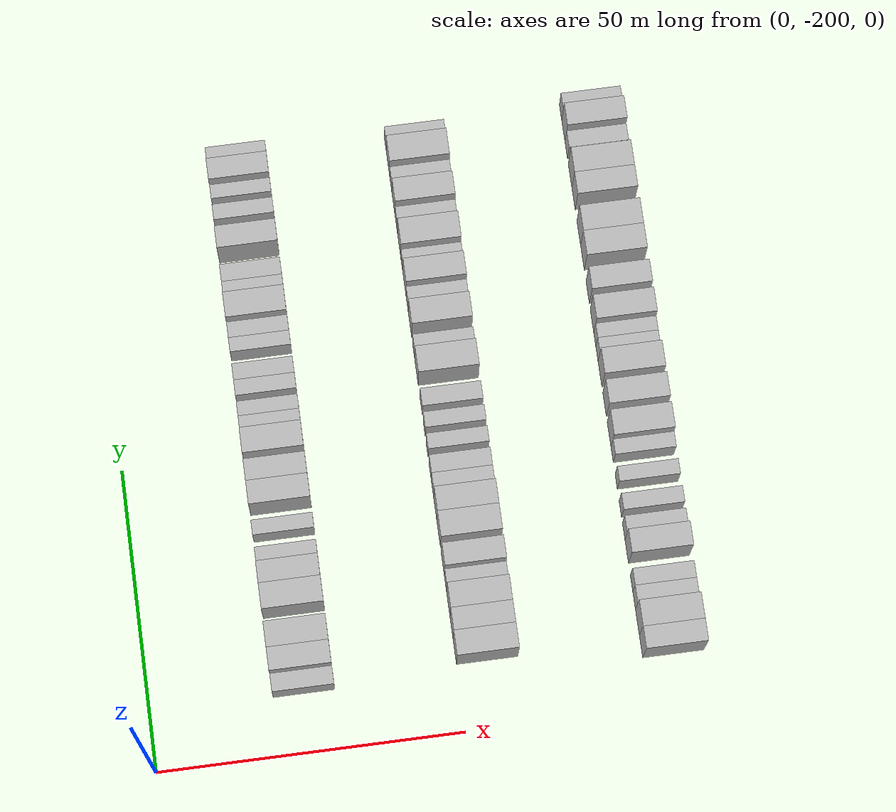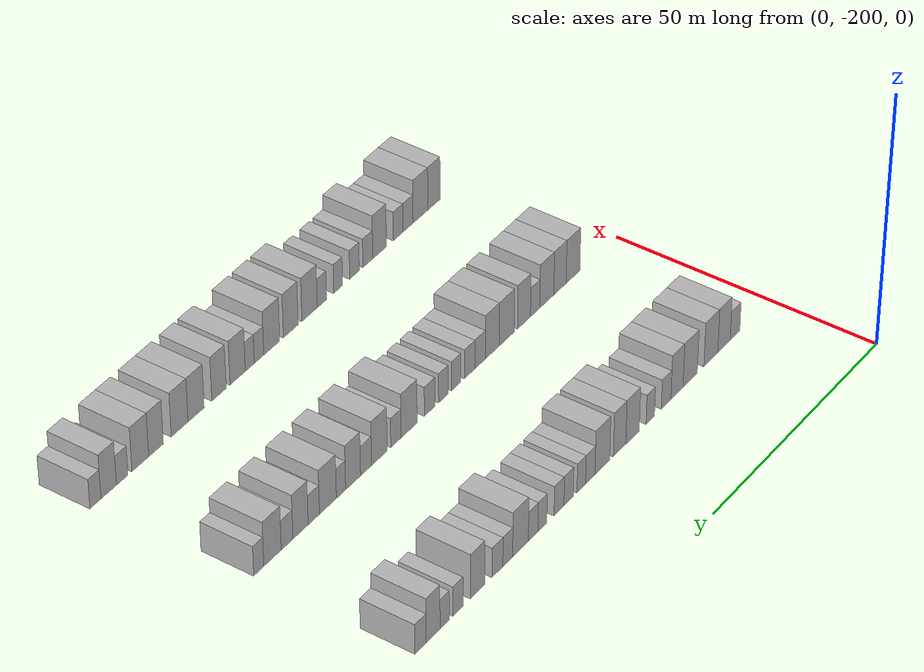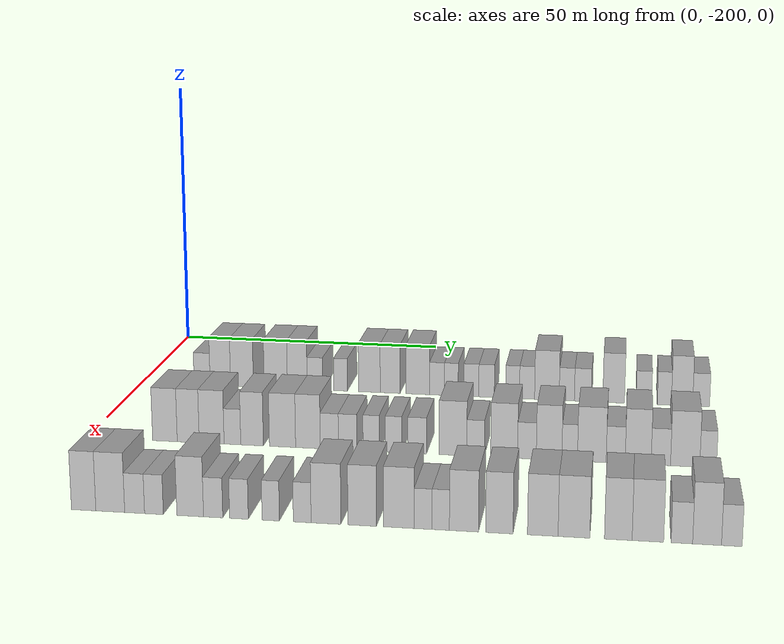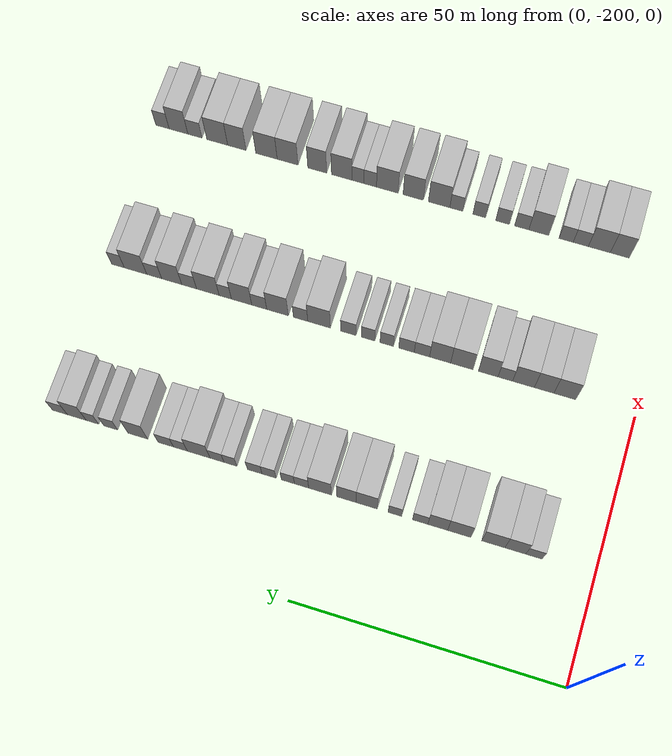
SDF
<sdf version="1.6">
 <world name="default">
  <model name="building_25">
   <static>1</static>
   <pose>25.0000 -188.8988 0 0.000000 0.000000 0.000000</pose>
   <link name="link">
    <pose>0 0 3.00 0 0 0</pose>
    <collision name="collision"><geometry><box><size>10.0000 2.9748 6.0000</size></box></geometry></collision>
    <visual name="visual">
     <cast_shadows>0</cast_shadows>
     <geometry><box><size>10.0000 2.9748 6.0000</size></box></geometry>
     <material>
      <script>
       <uri>model://HANNAS_wall/materials/scripts</uri>
       <uri>model://HANNAS_wall/materials/textures</uri>
       <name>vrc/HANNAS_wall</name>
      </script>
     </material>
    </visual>
   </link>
  </model>
  <model name="building_26">
   <static>1</static>
   <pose>25.0000 -185.5130 0 0.000000 0.000000 0.000000</pose>
   <link name="link">
    <pose>0 0 4.50 0 0 0</pose>
    <collision name="collision"><geometry><box><size>10.0000 3.7967 9.0000</size></box></geometry></collision>
    <visual name="visual">
     <cast_shadows>0</cast_shadows>
     <geometry><box><size>10.0000 3.7967 9.0000</size></box></geometry>
     <material>
      <script>
       <uri>model://HANNAS_wall/materials/scripts</uri>
       <uri>model://HANNAS_wall/materials/textures</uri>
       <name>vrc/HANNAS_wall</name>
      </script>
     </material>
    </visual>
   </link>
  </model>
  <model name="building_27">
   <static>1</static>
   <pose>25.0000 -181.5029 0 0.000000 0.000000 0.000000</pose>
   <link name="link">
    <pose>0 0 4.50 0 0 0</pose>
    <collision name="collision"><geometry><box><size>10.0000 4.2234 9.0000</size></box></geometry></collision>
    <visual name="visual">
     <cast_shadows>0</cast_shadows>
     <geometry><box><size>10.0000 4.2234 9.0000</size></box></geometry>
     <material>
      <script>
       <uri>model://HANNAS_wall/materials/scripts</uri>
       <uri>model://HANNAS_wall/materials/textures</uri>
       <name>vrc/HANNAS_wall</name>
      </script>
     </material>
    </visual>
   </link>
  </model>
  <model name="building_28">
   <static>1</static>
   <pose>25.0000 -175.2594 0 0.000000 0.000000 0.000000</pose>
   <link name="link">
    <pose>0 0 4.50 0 0 0</pose>
    <collision name="collision"><geometry><box><size>10.0000 4.2636 9.0000</size></box></geometry></collision>
    <visual name="visual">
     <cast_shadows>0</cast_shadows>
     <geometry><box><size>10.0000 4.2636 9.0000</size></box></geometry>
     <material>
      <script>
       <uri>model://HANNAS_wall/materials/scripts</uri>
       <uri>model://HANNAS_wall/materials/textures</uri>
       <name>vrc/HANNAS_wall</name>
      </script>
     </material>
    </visual>
   </link>
  </model>
  <model name="building_29">
   <static>1</static>
   <pose>25.0000 -171.3169 0 0.000000 0.000000 0.000000</pose>
   <link name="link">
    <pose>0 0 4.50 0 0 0</pose>
    <collision name="collision"><geometry><box><size>10.0000 3.6215 9.0000</size></box></geometry></collision>
    <visual name="visual">
     <cast_shadows>0</cast_shadows>
     <geometry><box><size>10.0000 3.6215 9.0000</size></box></geometry>
     <material>
      <script>
       <uri>model://HANNAS_wall/materials/scripts</uri>
       <uri>model://HANNAS_wall/materials/textures</uri>
       <name>vrc/HANNAS_wall</name>
      </script>
     </material>
    </visual>
   </link>
  </model>
  <model name="building_30">
   <static>1</static>
   <pose>25.0000 -168.0825 0 0.000000 0.000000 0.000000</pose>
   <link name="link">
    <pose>0 0 3.00 0 0 0</pose>
    <collision name="collision"><geometry><box><size>10.0000 2.8471 6.0000</size></box></geometry></collision>
    <visual name="visual">
     <cast_shadows>0</cast_shadows>
     <geometry><box><size>10.0000 2.8471 6.0000</size></box></geometry>
     <material>
      <script>
       <uri>model://HANNAS_wall/materials/scripts</uri>
       <uri>model://HANNAS_wall/materials/textures</uri>
       <name>vrc/HANNAS_wall</name>
      </script>
     </material>
    </visual>
   </link>
  </model>
  <model name="building_31">
   <static>1</static>
   <pose>25.0000 -163.4089 0 0.000000 0.000000 0.000000</pose>
   <link name="link">
    <pose>0 0 3.00 0 0 0</pose>
    <collision name="collision"><geometry><box><size>10.0000 2.5001 6.0000</size></box></geometry></collision>
    <visual name="visual">
     <cast_shadows>0</cast_shadows>
     <geometry><box><size>10.0000 2.5001 6.0000</size></box></geometry>
     <material>
      <script>
       <uri>model://HANNAS_wall/materials/scripts</uri>
       <uri>model://HANNAS_wall/materials/textures</uri>
       <name>vrc/HANNAS_wall</name>
      </script>
     </material>
    </visual>
   </link>
  </model>
  <model name="building_32">
   <static>1</static>
   <pose>25.0000 -158.1939 0 0.000000 0.000000 0.000000</pose>
   <link name="link">
    <pose>0 0 4.50 0 0 0</pose>
    <collision name="collision"><geometry><box><size>10.0000 3.9300 9.0000</size></box></geometry></collision>
    <visual name="visual">
     <cast_shadows>0</cast_shadows>
     <geometry><box><size>10.0000 3.9300 9.0000</size></box></geometry>
     <material>
      <script>
       <uri>model://HANNAS_wall/materials/scripts</uri>
       <uri>model://HANNAS_wall/materials/textures</uri>
       <name>vrc/HANNAS_wall</name>
      </script>
     </material>
    </visual>
   </link>
  </model>
  <model name="building_33">
   <static>1</static>
   <pose>25.0000 -154.4274 0 0.000000 0.000000 0.000000</pose>
   <link name="link">
    <pose>0 0 4.50 0 0 0</pose>
    <collision name="collision"><geometry><box><size>10.0000 3.6031 9.0000</size></box></geometry></collision>
    <visual name="visual">
     <cast_shadows>0</cast_shadows>
     <geometry><box><size>10.0000 3.6031 9.0000</size></box></geometry>
     <material>
      <script>
       <uri>model://HANNAS_wall/materials/scripts</uri>
       <uri>model://HANNAS_wall/materials/textures</uri>
       <name>vrc/HANNAS_wall</name>
      </script>
     </material>
    </visual>
   </link>
  </model>
  <model name="building_34">
   <static>1</static>
   <pose>25.0000 -149.4986 0 0.000000 0.000000 0.000000</pose>
   <link name="link">
    <pose>0 0 4.50 0 0 0</pose>
    <collision name="collision"><geometry><box><size>10.0000 4.2544 9.0000</size></box></geometry></collision>
    <visual name="visual">
     <cast_shadows>0</cast_shadows>
     <geometry><box><size>10.0000 4.2544 9.0000</size></box></geometry>
     <material>
      <script>
       <uri>model://HANNAS_wall/materials/scripts</uri>
       <uri>model://HANNAS_wall/materials/textures</uri>
       <name>vrc/HANNAS_wall</name>
      </script>
     </material>
    </visual>
   </link>
  </model>
  <model name="building_35">
   <static>1</static>
   <pose>25.0000 -146.0353 0 0.000000 0.000000 0.000000</pose>
   <link name="link">
    <pose>0 0 3.00 0 0 0</pose>
    <collision name="collision"><geometry><box><size>10.0000 2.6723 6.0000</size></box></geometry></collision>
    <visual name="visual">
     <cast_shadows>0</cast_shadows>
     <geometry><box><size>10.0000 2.6723 6.0000</size></box></geometry>
     <material>
      <script>
       <uri>model://HANNAS_wall/materials/scripts</uri>
       <uri>model://HANNAS_wall/materials/textures</uri>
       <name>vrc/HANNAS_wall</name>
      </script>
     </material>
    </visual>
   </link>
  </model>
  <model name="building_36">
   <static>1</static>
   <pose>25.0000 -143.4784 0 0.000000 0.000000 0.000000</pose>
   <link name="link">
    <pose>0 0 3.00 0 0 0</pose>
    <collision name="collision"><geometry><box><size>10.0000 2.4415 6.0000</size></box></geometry></collision>
    <visual name="visual">
     <cast_shadows>0</cast_shadows>
     <geometry><box><size>10.0000 2.4415 6.0000</size></box></geometry>
     <material>
      <script>
       <uri>model://HANNAS_wall/materials/scripts</uri>
       <uri>model://HANNAS_wall/materials/textures</uri>
       <name>vrc/HANNAS_wall</name>
      </script>
     </material>
    </visual>
   </link>
  </model>
  <model name="building_37">
   <static>1</static>
   <pose>25.0000 -139.9270 0 0.000000 0.000000 0.000000</pose>
   <link name="link">
    <pose>0 0 3.00 0 0 0</pose>
    <collision name="collision"><geometry><box><size>10.0000 2.6613 6.0000</size></box></geometry></collision>
    <visual name="visual">
     <cast_shadows>0</cast_shadows>
     <geometry><box><size>10.0000 2.6613 6.0000</size></box></geometry>
     <material>
      <script>
       <uri>model://HANNAS_wall/materials/scripts</uri>
       <uri>model://HANNAS_wall/materials/textures</uri>
       <name>vrc/HANNAS_wall</name>
      </script>
     </material>
    </visual>
   </link>
  </model>
  <model name="building_38">
   <static>1</static>
   <pose>25.0000 -137.2169 0 0.000000 0.000000 0.000000</pose>
   <link name="link">
    <pose>0 0 3.00 0 0 0</pose>
    <collision name="collision"><geometry><box><size>10.0000 2.7589 6.0000</size></box></geometry></collision>
    <visual name="visual">
     <cast_shadows>0</cast_shadows>
     <geometry><box><size>10.0000 2.7589 6.0000</size></box></geometry>
     <material>
      <script>
       <uri>model://HANNAS_wall/materials/scripts</uri>
       <uri>model://HANNAS_wall/materials/textures</uri>
       <name>vrc/HANNAS_wall</name>
      </script>
     </material>
    </visual>
   </link>
  </model>
  <model name="building_39">
   <static>1</static>
   <pose>25.0000 -132.6166 0 0.000000 0.000000 0.000000</pose>
   <link name="link">
    <pose>0 0 3.00 0 0 0</pose>
    <collision name="collision"><geometry><box><size>10.0000 2.4417 6.0000</size></box></geometry></collision>
    <visual name="visual">
     <cast_shadows>0</cast_shadows>
     <geometry><box><size>10.0000 2.4417 6.0000</size></box></geometry>
     <material>
      <script>
       <uri>model://HANNAS_wall/materials/scripts</uri>
       <uri>model://HANNAS_wall/materials/textures</uri>
       <name>vrc/HANNAS_wall</name>
      </script>
     </material>
    </visual>
   </link>
  </model>
  <model name="building_40">
   <static>1</static>
   <pose>25.0000 -130.0644 0 0.000000 0.000000 0.000000</pose>
   <link name="link">
    <pose>0 0 3.00 0 0 0</pose>
    <collision name="collision"><geometry><box><size>10.0000 2.6626 6.0000</size></box></geometry></collision>
    <visual name="visual">
     <cast_shadows>0</cast_shadows>
     <geometry><box><size>10.0000 2.6626 6.0000</size></box></geometry>
     <material>
      <script>
       <uri>model://HANNAS_wall/materials/scripts</uri>
       <uri>model://HANNAS_wall/materials/textures</uri>
       <name>vrc/HANNAS_wall</name>
      </script>
     </material>
    </visual>
   </link>
  </model>
  <model name="building_41">
   <static>1</static>
   <pose>25.0000 -126.5774 0 0.000000 0.000000 0.000000</pose>
   <link name="link">
    <pose>0 0 4.50 0 0 0</pose>
    <collision name="collision"><geometry><box><size>10.0000 4.3115 9.0000</size></box></geometry></collision>
    <visual name="visual">
     <cast_shadows>0</cast_shadows>
     <geometry><box><size>10.0000 4.3115 9.0000</size></box></geometry>
     <material>
      <script>
       <uri>model://HANNAS_wall/materials/scripts</uri>
       <uri>model://HANNAS_wall/materials/textures</uri>
       <name>vrc/HANNAS_wall</name>
      </script>
     </material>
    </visual>
   </link>
  </model>
  <model name="building_42">
   <static>1</static>
   <pose>25.0000 -123.0931 0 0.000000 0.000000 0.000000</pose>
   <link name="link">
    <pose>0 0 3.00 0 0 0</pose>
    <collision name="collision"><geometry><box><size>10.0000 2.6571 6.0000</size></box></geometry></collision>
    <visual name="visual">
     <cast_shadows>0</cast_shadows>
     <geometry><box><size>10.0000 2.6571 6.0000</size></box></geometry>
     <material>
      <script>
       <uri>model://HANNAS_wall/materials/scripts</uri>
       <uri>model://HANNAS_wall/materials/textures</uri>
       <name>vrc/HANNAS_wall</name>
      </script>
     </material>
    </visual>
   </link>
  </model>
  <model name="building_43">
   <static>1</static>
   <pose>25.0000 -120.2917 0 0.000000 0.000000 0.000000</pose>
   <link name="link">
    <pose>0 0 3.00 0 0 0</pose>
    <collision name="collision"><geometry><box><size>10.0000 2.9458 6.0000</size></box></geometry></collision>
    <visual name="visual">
     <cast_shadows>0</cast_shadows>
     <geometry><box><size>10.0000 2.9458 6.0000</size></box></geometry>
     <material>
      <script>
       <uri>model://HANNAS_wall/materials/scripts</uri>
       <uri>model://HANNAS_wall/materials/textures</uri>
       <name>vrc/HANNAS_wall</name>
      </script>
     </material>
    </visual>
   </link>
  </model>
  <model name="building_44">
   <static>1</static>
   <pose>25.0000 -114.9321 0 0.000000 0.000000 0.000000</pose>
   <link name="link">
    <pose>0 0 4.50 0 0 0</pose>
    <collision name="collision"><geometry><box><size>10.0000 3.7733 9.0000</size></box></geometry></collision>
    <visual name="visual">
     <cast_shadows>0</cast_shadows>
     <geometry><box><size>10.0000 3.7733 9.0000</size></box></geometry>
     <material>
      <script>
       <uri>model://HANNAS_wall/materials/scripts</uri>
       <uri>model://HANNAS_wall/materials/textures</uri>
       <name>vrc/HANNAS_wall</name>
      </script>
     </material>
    </visual>
   </link>
  </model>
  <model name="building_45">
   <static>1</static>
   <pose>25.0000 -109.7149 0 0.000000 0.000000 0.000000</pose>
   <link name="link">
    <pose>0 0 3.00 0 0 0</pose>
    <collision name="collision"><geometry><box><size>10.0000 2.6612 6.0000</size></box></geometry></collision>
    <visual name="visual">
     <cast_shadows>0</cast_shadows>
     <geometry><box><size>10.0000 2.6612 6.0000</size></box></geometry>
     <material>
      <script>
       <uri>model://HANNAS_wall/materials/scripts</uri>
       <uri>model://HANNAS_wall/materials/textures</uri>
       <name>vrc/HANNAS_wall</name>
      </script>
     </material>
    </visual>
   </link>
  </model>
  <model name="building_46">
   <static>1</static>
   <pose>25.0000 -106.1751 0 0.000000 0.000000 0.000000</pose>
   <link name="link">
    <pose>0 0 3.00 0 0 0</pose>
    <collision name="collision"><geometry><box><size>10.0000 2.4183 6.0000</size></box></geometry></collision>
    <visual name="visual">
     <cast_shadows>0</cast_shadows>
     <geometry><box><size>10.0000 2.4183 6.0000</size></box></geometry>
     <material>
      <script>
       <uri>model://HANNAS_wall/materials/scripts</uri>
       <uri>model://HANNAS_wall/materials/textures</uri>
       <name>vrc/HANNAS_wall</name>
      </script>
     </material>
    </visual>
   </link>
  </model>
  <model name="building_47">
   <static>1</static>
   <pose>25.0000 -103.1440 0 0.000000 0.000000 0.000000</pose>
   <link name="link">
    <pose>0 0 4.50 0 0 0</pose>
    <collision name="collision"><geometry><box><size>10.0000 3.6439 9.0000</size></box></geometry></collision>
    <visual name="visual">
     <cast_shadows>0</cast_shadows>
     <geometry><box><size>10.0000 3.6439 9.0000</size></box></geometry>
     <material>
      <script>
       <uri>model://HANNAS_wall/materials/scripts</uri>
       <uri>model://HANNAS_wall/materials/textures</uri>
       <name>vrc/HANNAS_wall</name>
      </script>
     </material>
    </visual>
   </link>
  </model>
  <model name="building_48">
   <static>1</static>
   <pose>25.0000 -99.8734 0 0.000000 0.000000 0.000000</pose>
   <link name="link">
    <pose>0 0 3.00 0 0 0</pose>
    <collision name="collision"><geometry><box><size>10.0000 2.8973 6.0000</size></box></geometry></collision>
    <visual name="visual">
     <cast_shadows>0</cast_shadows>
     <geometry><box><size>10.0000 2.8973 6.0000</size></box></geometry>
     <material>
      <script>
       <uri>model://HANNAS_wall/materials/scripts</uri>
       <uri>model://HANNAS_wall/materials/textures</uri>
       <name>vrc/HANNAS_wall</name>
      </script>
     </material>
    </visual>
   </link>
  </model>
  <model name="building_176">
   <static>1</static>
   <pose>55.0000 -186.8468 0 0.000000 0.000000 0.000000</pose>
   <link name="link">
    <pose>0 0 4.50 0 0 0</pose>
    <collision name="collision"><geometry><box><size>10.0000 4.1241 9.0000</size></box></geometry></collision>
    <visual name="visual">
     <cast_shadows>0</cast_shadows>
     <geometry><box><size>10.0000 4.1241 9.0000</size></box></geometry>
     <material>
      <script>
       <uri>model://HANNAS_wall/materials/scripts</uri>
       <uri>model://HANNAS_wall/materials/textures</uri>
       <name>vrc/HANNAS_wall</name>
      </script>
     </material>
    </visual>
   </link>
  </model>
  <model name="building_177">
   <static>1</static>
   <pose>55.0000 -182.9463 0 0.000000 0.000000 0.000000</pose>
   <link name="link">
    <pose>0 0 4.50 0 0 0</pose>
    <collision name="collision"><geometry><box><size>10.0000 3.6770 9.0000</size></box></geometry></collision>
    <visual name="visual">
     <cast_shadows>0</cast_shadows>
     <geometry><box><size>10.0000 3.6770 9.0000</size></box></geometry>
     <material>
      <script>
       <uri>model://HANNAS_wall/materials/scripts</uri>
       <uri>model://HANNAS_wall/materials/textures</uri>
       <name>vrc/HANNAS_wall</name>
      </script>
     </material>
    </visual>
   </link>
  </model>
  <model name="building_178">
   <static>1</static>
   <pose>55.0000 -179.0432 0 0.000000 0.000000 0.000000</pose>
   <link name="link">
    <pose>0 0 4.50 0 0 0</pose>
    <collision name="collision"><geometry><box><size>10.0000 4.1292 9.0000</size></box></geometry></collision>
    <visual name="visual">
     <cast_shadows>0</cast_shadows>
     <geometry><box><size>10.0000 4.1292 9.0000</size></box></geometry>
     <material>
      <script>
       <uri>model://HANNAS_wall/materials/scripts</uri>
       <uri>model://HANNAS_wall/materials/textures</uri>
       <name>vrc/HANNAS_wall</name>
      </script>
     </material>
    </visual>
   </link>
  </model>
  <model name="building_179">
   <static>1</static>
   <pose>55.0000 -175.6002 0 0.000000 0.000000 0.000000</pose>
   <link name="link">
    <pose>0 0 3.00 0 0 0</pose>
    <collision name="collision"><geometry><box><size>10.0000 2.7567 6.0000</size></box></geometry></collision>
    <visual name="visual">
     <cast_shadows>0</cast_shadows>
     <geometry><box><size>10.0000 2.7567 6.0000</size></box></geometry>
     <material>
      <script>
       <uri>model://HANNAS_wall/materials/scripts</uri>
       <uri>model://HANNAS_wall/materials/textures</uri>
       <name>vrc/HANNAS_wall</name>
      </script>
     </material>
    </visual>
   </link>
  </model>
  <model name="building_180">
   <static>1</static>
   <pose>55.0000 -172.3541 0 0.000000 0.000000 0.000000</pose>
   <link name="link">
    <pose>0 0 4.50 0 0 0</pose>
    <collision name="collision"><geometry><box><size>10.0000 3.7356 9.0000</size></box></geometry></collision>
    <visual name="visual">
     <cast_shadows>0</cast_shadows>
     <geometry><box><size>10.0000 3.7356 9.0000</size></box></geometry>
     <material>
      <script>
       <uri>model://HANNAS_wall/materials/scripts</uri>
       <uri>model://HANNAS_wall/materials/textures</uri>
       <name>vrc/HANNAS_wall</name>
      </script>
     </material>
    </visual>
   </link>
  </model>
  <model name="building_181">
   <static>1</static>
   <pose>55.0000 -167.3401 0 0.000000 0.000000 0.000000</pose>
   <link name="link">
    <pose>0 0 4.50 0 0 0</pose>
    <collision name="collision"><geometry><box><size>10.0000 4.2922 9.0000</size></box></geometry></collision>
    <visual name="visual">
     <cast_shadows>0</cast_shadows>
     <geometry><box><size>10.0000 4.2922 9.0000</size></box></geometry>
     <material>
      <script>
       <uri>model://HANNAS_wall/materials/scripts</uri>
       <uri>model://HANNAS_wall/materials/textures</uri>
       <name>vrc/HANNAS_wall</name>
      </script>
     </material>
    </visual>
   </link>
  </model>
  <model name="building_182">
   <static>1</static>
   <pose>55.0000 -163.1769 0 0.000000 0.000000 0.000000</pose>
   <link name="link">
    <pose>0 0 4.50 0 0 0</pose>
    <collision name="collision"><geometry><box><size>10.0000 4.0341 9.0000</size></box></geometry></collision>
    <visual name="visual">
     <cast_shadows>0</cast_shadows>
     <geometry><box><size>10.0000 4.0341 9.0000</size></box></geometry>
     <material>
      <script>
       <uri>model://HANNAS_wall/materials/scripts</uri>
       <uri>model://HANNAS_wall/materials/textures</uri>
       <name>vrc/HANNAS_wall</name>
      </script>
     </material>
    </visual>
   </link>
  </model>
  <model name="building_183">
   <static>1</static>
   <pose>55.0000 -159.6819 0 0.000000 0.000000 0.000000</pose>
   <link name="link">
    <pose>0 0 3.00 0 0 0</pose>
    <collision name="collision"><geometry><box><size>10.0000 2.9560 6.0000</size></box></geometry></collision>
    <visual name="visual">
     <cast_shadows>0</cast_shadows>
     <geometry><box><size>10.0000 2.9560 6.0000</size></box></geometry>
     <material>
      <script>
       <uri>model://HANNAS_wall/materials/scripts</uri>
       <uri>model://HANNAS_wall/materials/textures</uri>
       <name>vrc/HANNAS_wall</name>
      </script>
     </material>
    </visual>
   </link>
  </model>
  <model name="building_184">
   <static>1</static>
   <pose>55.0000 -156.7044 0 0.000000 0.000000 0.000000</pose>
   <link name="link">
    <pose>0 0 3.00 0 0 0</pose>
    <collision name="collision"><geometry><box><size>10.0000 2.9989 6.0000</size></box></geometry></collision>
    <visual name="visual">
     <cast_shadows>0</cast_shadows>
     <geometry><box><size>10.0000 2.9989 6.0000</size></box></geometry>
     <material>
      <script>
       <uri>model://HANNAS_wall/materials/scripts</uri>
       <uri>model://HANNAS_wall/materials/textures</uri>
       <name>vrc/HANNAS_wall</name>
      </script>
     </material>
    </visual>
   </link>
  </model>
  <model name="building_185">
   <static>1</static>
   <pose>55.0000 -152.9023 0 0.000000 0.000000 0.000000</pose>
   <link name="link">
    <pose>0 0 3.00 0 0 0</pose>
    <collision name="collision"><geometry><box><size>10.0000 2.6054 6.0000</size></box></geometry></collision>
    <visual name="visual">
     <cast_shadows>0</cast_shadows>
     <geometry><box><size>10.0000 2.6054 6.0000</size></box></geometry>
     <material>
      <script>
       <uri>model://HANNAS_wall/materials/scripts</uri>
       <uri>model://HANNAS_wall/materials/textures</uri>
       <name>vrc/HANNAS_wall</name>
      </script>
     </material>
    </visual>
   </link>
  </model>
  <model name="building_186">
   <static>1</static>
   <pose>55.0000 -149.2831 0 0.000000 0.000000 0.000000</pose>
   <link name="link">
    <pose>0 0 3.00 0 0 0</pose>
    <collision name="collision"><geometry><box><size>10.0000 2.6328 6.0000</size></box></geometry></collision>
    <visual name="visual">
     <cast_shadows>0</cast_shadows>
     <geometry><box><size>10.0000 2.6328 6.0000</size></box></geometry>
     <material>
      <script>
       <uri>model://HANNAS_wall/materials/scripts</uri>
       <uri>model://HANNAS_wall/materials/textures</uri>
       <name>vrc/HANNAS_wall</name>
      </script>
     </material>
    </visual>
   </link>
  </model>
  <model name="building_187">
   <static>1</static>
   <pose>55.0000 -145.4742 0 0.000000 0.000000 0.000000</pose>
   <link name="link">
    <pose>0 0 3.00 0 0 0</pose>
    <collision name="collision"><geometry><box><size>10.0000 2.9851 6.0000</size></box></geometry></collision>
    <visual name="visual">
     <cast_shadows>0</cast_shadows>
     <geometry><box><size>10.0000 2.9851 6.0000</size></box></geometry>
     <material>
      <script>
       <uri>model://HANNAS_wall/materials/scripts</uri>
       <uri>model://HANNAS_wall/materials/textures</uri>
       <name>vrc/HANNAS_wall</name>
      </script>
     </material>
    </visual>
   </link>
  </model>
  <model name="building_188">
   <static>1</static>
   <pose>55.0000 -139.7740 0 0.000000 0.000000 0.000000</pose>
   <link name="link">
    <pose>0 0 4.50 0 0 0</pose>
    <collision name="collision"><geometry><box><size>10.0000 4.4152 9.0000</size></box></geometry></collision>
    <visual name="visual">
     <cast_shadows>0</cast_shadows>
     <geometry><box><size>10.0000 4.4152 9.0000</size></box></geometry>
     <material>
      <script>
       <uri>model://HANNAS_wall/materials/scripts</uri>
       <uri>model://HANNAS_wall/materials/textures</uri>
       <name>vrc/HANNAS_wall</name>
      </script>
     </material>
    </visual>
   </link>
  </model>
  <model name="building_189">
   <static>1</static>
   <pose>55.0000 -136.1726 0 0.000000 0.000000 0.000000</pose>
   <link name="link">
    <pose>0 0 3.00 0 0 0</pose>
    <collision name="collision"><geometry><box><size>10.0000 2.7875 6.0000</size></box></geometry></collision>
    <visual name="visual">
     <cast_shadows>0</cast_shadows>
     <geometry><box><size>10.0000 2.7875 6.0000</size></box></geometry>
     <material>
      <script>
       <uri>model://HANNAS_wall/materials/scripts</uri>
       <uri>model://HANNAS_wall/materials/textures</uri>
       <name>vrc/HANNAS_wall</name>
      </script>
     </material>
    </visual>
   </link>
  </model>
  <model name="building_190">
   <static>1</static>
   <pose>55.0000 -131.6580 0 0.000000 0.000000 0.000000</pose>
   <link name="link">
    <pose>0 0 4.50 0 0 0</pose>
    <collision name="collision"><geometry><box><size>10.0000 4.2417 9.0000</size></box></geometry></collision>
    <visual name="visual">
     <cast_shadows>0</cast_shadows>
     <geometry><box><size>10.0000 4.2417 9.0000</size></box></geometry>
     <material>
      <script>
       <uri>model://HANNAS_wall/materials/scripts</uri>
       <uri>model://HANNAS_wall/materials/textures</uri>
       <name>vrc/HANNAS_wall</name>
      </script>
     </material>
    </visual>
   </link>
  </model>
  <model name="building_191">
   <static>1</static>
   <pose>55.0000 -128.0659 0 0.000000 0.000000 0.000000</pose>
   <link name="link">
    <pose>0 0 3.00 0 0 0</pose>
    <collision name="collision"><geometry><box><size>10.0000 2.9425 6.0000</size></box></geometry></collision>
    <visual name="visual">
     <cast_shadows>0</cast_shadows>
     <geometry><box><size>10.0000 2.9425 6.0000</size></box></geometry>
     <material>
      <script>
       <uri>model://HANNAS_wall/materials/scripts</uri>
       <uri>model://HANNAS_wall/materials/textures</uri>
       <name>vrc/HANNAS_wall</name>
      </script>
     </material>
    </visual>
   </link>
  </model>
  <model name="building_192">
   <static>1</static>
   <pose>55.0000 -124.5884 0 0.000000 0.000000 0.000000</pose>
   <link name="link">
    <pose>0 0 4.50 0 0 0</pose>
    <collision name="collision"><geometry><box><size>10.0000 4.0125 9.0000</size></box></geometry></collision>
    <visual name="visual">
     <cast_shadows>0</cast_shadows>
     <geometry><box><size>10.0000 4.0125 9.0000</size></box></geometry>
     <material>
      <script>
       <uri>model://HANNAS_wall/materials/scripts</uri>
       <uri>model://HANNAS_wall/materials/textures</uri>
       <name>vrc/HANNAS_wall</name>
      </script>
     </material>
    </visual>
   </link>
  </model>
  <model name="building_193">
   <static>1</static>
   <pose>55.0000 -121.3646 0 0.000000 0.000000 0.000000</pose>
   <link name="link">
    <pose>0 0 3.00 0 0 0</pose>
    <collision name="collision"><geometry><box><size>10.0000 2.4350 6.0000</size></box></geometry></collision>
    <visual name="visual">
     <cast_shadows>0</cast_shadows>
     <geometry><box><size>10.0000 2.4350 6.0000</size></box></geometry>
     <material>
      <script>
       <uri>model://HANNAS_wall/materials/scripts</uri>
       <uri>model://HANNAS_wall/materials/textures</uri>
       <name>vrc/HANNAS_wall</name>
      </script>
     </material>
    </visual>
   </link>
  </model>
  <model name="building_194">
   <static>1</static>
   <pose>55.0000 -117.9118 0 0.000000 0.000000 0.000000</pose>
   <link name="link">
    <pose>0 0 4.50 0 0 0</pose>
    <collision name="collision"><geometry><box><size>10.0000 4.4707 9.0000</size></box></geometry></collision>
    <visual name="visual">
     <cast_shadows>0</cast_shadows>
     <geometry><box><size>10.0000 4.4707 9.0000</size></box></geometry>
     <material>
      <script>
       <uri>model://HANNAS_wall/materials/scripts</uri>
       <uri>model://HANNAS_wall/materials/textures</uri>
       <name>vrc/HANNAS_wall</name>
      </script>
     </material>
    </visual>
   </link>
  </model>
  <model name="building_195">
   <static>1</static>
   <pose>55.0000 -114.2077 0 0.000000 0.000000 0.000000</pose>
   <link name="link">
    <pose>0 0 3.00 0 0 0</pose>
    <collision name="collision"><geometry><box><size>10.0000 2.9374 6.0000</size></box></geometry></collision>
    <visual name="visual">
     <cast_shadows>0</cast_shadows>
     <geometry><box><size>10.0000 2.9374 6.0000</size></box></geometry>
     <material>
      <script>
       <uri>model://HANNAS_wall/materials/scripts</uri>
       <uri>model://HANNAS_wall/materials/textures</uri>
       <name>vrc/HANNAS_wall</name>
      </script>
     </material>
    </visual>
   </link>
  </model>
  <model name="building_196">
   <static>1</static>
   <pose>55.0000 -110.7365 0 0.000000 0.000000 0.000000</pose>
   <link name="link">
    <pose>0 0 4.50 0 0 0</pose>
    <collision name="collision"><geometry><box><size>10.0000 4.0049 9.0000</size></box></geometry></collision>
    <visual name="visual">
     <cast_shadows>0</cast_shadows>
     <geometry><box><size>10.0000 4.0049 9.0000</size></box></geometry>
     <material>
      <script>
       <uri>model://HANNAS_wall/materials/scripts</uri>
       <uri>model://HANNAS_wall/materials/textures</uri>
       <name>vrc/HANNAS_wall</name>
      </script>
     </material>
    </visual>
   </link>
  </model>
  <model name="building_197">
   <static>1</static>
   <pose>55.0000 -107.2400 0 0.000000 0.000000 0.000000</pose>
   <link name="link">
    <pose>0 0 3.00 0 0 0</pose>
    <collision name="collision"><geometry><box><size>10.0000 2.9882 6.0000</size></box></geometry></collision>
    <visual name="visual">
     <cast_shadows>0</cast_shadows>
     <geometry><box><size>10.0000 2.9882 6.0000</size></box></geometry>
     <material>
      <script>
       <uri>model://HANNAS_wall/materials/scripts</uri>
       <uri>model://HANNAS_wall/materials/textures</uri>
       <name>vrc/HANNAS_wall</name>
      </script>
     </material>
    </visual>
   </link>
  </model>
  <model name="building_198">
   <static>1</static>
   <pose>55.0000 -103.5035 0 0.000000 0.000000 0.000000</pose>
   <link name="link">
    <pose>0 0 4.50 0 0 0</pose>
    <collision name="collision"><geometry><box><size>10.0000 4.4848 9.0000</size></box></geometry></collision>
    <visual name="visual">
     <cast_shadows>0</cast_shadows>
     <geometry><box><size>10.0000 4.4848 9.0000</size></box></geometry>
     <material>
      <script>
       <uri>model://HANNAS_wall/materials/scripts</uri>
       <uri>model://HANNAS_wall/materials/textures</uri>
       <name>vrc/HANNAS_wall</name>
      </script>
     </material>
    </visual>
   </link>
  </model>
  <model name="building_199">
   <static>1</static>
   <pose>55.0000 -99.9818 0 0.000000 0.000000 0.000000</pose>
   <link name="link">
    <pose>0 0 3.00 0 0 0</pose>
    <collision name="collision"><geometry><box><size>10.0000 2.5585 6.0000</size></box></geometry></collision>
    <visual name="visual">
     <cast_shadows>0</cast_shadows>
     <geometry><box><size>10.0000 2.5585 6.0000</size></box></geometry>
     <material>
      <script>
       <uri>model://HANNAS_wall/materials/scripts</uri>
       <uri>model://HANNAS_wall/materials/textures</uri>
       <name>vrc/HANNAS_wall</name>
      </script>
     </material>
    </visual>
   </link>
  </model>
  <model name="building_318">
   <static>1</static>
   <pose>85.0000 -189.9357 0 0.000000 0.000000 0.000000</pose>
   <link name="link">
    <pose>0 0 4.50 0 0 0</pose>
    <collision name="collision"><geometry><box><size>10.0000 3.6541 9.0000</size></box></geometry></collision>
    <visual name="visual">
     <cast_shadows>0</cast_shadows>
     <geometry><box><size>10.0000 3.6541 9.0000</size></box></geometry>
     <material>
      <script>
       <uri>model://HANNAS_wall/materials/scripts</uri>
       <uri>model://HANNAS_wall/materials/textures</uri>
       <name>vrc/HANNAS_wall</name>
      </script>
     </material>
    </visual>
   </link>
  </model>
  <model name="building_319">
   <static>1</static>
   <pose>85.0000 -185.9586 0 0.000000 0.000000 0.000000</pose>
   <link name="link">
    <pose>0 0 4.50 0 0 0</pose>
    <collision name="collision"><geometry><box><size>10.0000 4.3001 9.0000</size></box></geometry></collision>
    <visual name="visual">
     <cast_shadows>0</cast_shadows>
     <geometry><box><size>10.0000 4.3001 9.0000</size></box></geometry>
     <material>
      <script>
       <uri>model://HANNAS_wall/materials/scripts</uri>
       <uri>model://HANNAS_wall/materials/textures</uri>
       <name>vrc/HANNAS_wall</name>
      </script>
     </material>
    </visual>
   </link>
  </model>
  <model name="building_320">
   <static>1</static>
   <pose>85.0000 -182.3337 0 0.000000 0.000000 0.000000</pose>
   <link name="link">
    <pose>0 0 3.00 0 0 0</pose>
    <collision name="collision"><geometry><box><size>10.0000 2.9496 6.0000</size></box></geometry></collision>
    <visual name="visual">
     <cast_shadows>0</cast_shadows>
     <geometry><box><size>10.0000 2.9496 6.0000</size></box></geometry>
     <material>
      <script>
       <uri>model://HANNAS_wall/materials/scripts</uri>
       <uri>model://HANNAS_wall/materials/textures</uri>
       <name>vrc/HANNAS_wall</name>
      </script>
     </material>
    </visual>
   </link>
  </model>
  <model name="building_321">
   <static>1</static>
   <pose>85.0000 -179.4694 0 0.000000 0.000000 0.000000</pose>
   <link name="link">
    <pose>0 0 3.00 0 0 0</pose>
    <collision name="collision"><geometry><box><size>10.0000 2.7791 6.0000</size></box></geometry></collision>
    <visual name="visual">
     <cast_shadows>0</cast_shadows>
     <geometry><box><size>10.0000 2.7791 6.0000</size></box></geometry>
     <material>
      <script>
       <uri>model://HANNAS_wall/materials/scripts</uri>
       <uri>model://HANNAS_wall/materials/textures</uri>
       <name>vrc/HANNAS_wall</name>
      </script>
     </material>
    </visual>
   </link>
  </model>
  <model name="building_322">
   <static>1</static>
   <pose>85.0000 -174.1181 0 0.000000 0.000000 0.000000</pose>
   <link name="link">
    <pose>0 0 4.50 0 0 0</pose>
    <collision name="collision"><geometry><box><size>10.0000 3.9234 9.0000</size></box></geometry></collision>
    <visual name="visual">
     <cast_shadows>0</cast_shadows>
     <geometry><box><size>10.0000 3.9234 9.0000</size></box></geometry>
     <material>
      <script>
       <uri>model://HANNAS_wall/materials/scripts</uri>
       <uri>model://HANNAS_wall/materials/textures</uri>
       <name>vrc/HANNAS_wall</name>
      </script>
     </material>
    </visual>
   </link>
  </model>
  <model name="building_323">
   <static>1</static>
   <pose>85.0000 -170.7479 0 0.000000 0.000000 0.000000</pose>
   <link name="link">
    <pose>0 0 3.00 0 0 0</pose>
    <collision name="collision"><geometry><box><size>10.0000 2.8171 6.0000</size></box></geometry></collision>
    <visual name="visual">
     <cast_shadows>0</cast_shadows>
     <geometry><box><size>10.0000 2.8171 6.0000</size></box></geometry>
     <material>
      <script>
       <uri>model://HANNAS_wall/materials/scripts</uri>
       <uri>model://HANNAS_wall/materials/textures</uri>
       <name>vrc/HANNAS_wall</name>
      </script>
     </material>
    </visual>
   </link>
  </model>
  <model name="building_324">
   <static>1</static>
   <pose>85.0000 -166.9764 0 0.000000 0.000000 0.000000</pose>
   <link name="link">
    <pose>0 0 3.00 0 0 0</pose>
    <collision name="collision"><geometry><box><size>10.0000 2.7258 6.0000</size></box></geometry></collision>
    <visual name="visual">
     <cast_shadows>0</cast_shadows>
     <geometry><box><size>10.0000 2.7258 6.0000</size></box></geometry>
     <material>
      <script>
       <uri>model://HANNAS_wall/materials/scripts</uri>
       <uri>model://HANNAS_wall/materials/textures</uri>
       <name>vrc/HANNAS_wall</name>
      </script>
     </material>
    </visual>
   </link>
  </model>
  <model name="building_325">
   <static>1</static>
   <pose>85.0000 -162.3537 0 0.000000 0.000000 0.000000</pose>
   <link name="link">
    <pose>0 0 3.00 0 0 0</pose>
    <collision name="collision"><geometry><box><size>10.0000 2.5195 6.0000</size></box></geometry></collision>
    <visual name="visual">
     <cast_shadows>0</cast_shadows>
     <geometry><box><size>10.0000 2.5195 6.0000</size></box></geometry>
     <material>
      <script>
       <uri>model://HANNAS_wall/materials/scripts</uri>
       <uri>model://HANNAS_wall/materials/textures</uri>
       <name>vrc/HANNAS_wall</name>
      </script>
     </material>
    </visual>
   </link>
  </model>
  <model name="building_326">
   <static>1</static>
   <pose>85.0000 -157.8089 0 0.000000 0.000000 0.000000</pose>
   <link name="link">
    <pose>0 0 3.00 0 0 0</pose>
    <collision name="collision"><geometry><box><size>10.0000 2.5701 6.0000</size></box></geometry></collision>
    <visual name="visual">
     <cast_shadows>0</cast_shadows>
     <geometry><box><size>10.0000 2.5701 6.0000</size></box></geometry>
     <material>
      <script>
       <uri>model://HANNAS_wall/materials/scripts</uri>
       <uri>model://HANNAS_wall/materials/textures</uri>
       <name>vrc/HANNAS_wall</name>
      </script>
     </material>
    </visual>
   </link>
  </model>
  <model name="building_327">
   <static>1</static>
   <pose>85.0000 -154.3821 0 0.000000 0.000000 0.000000</pose>
   <link name="link">
    <pose>0 0 4.50 0 0 0</pose>
    <collision name="collision"><geometry><box><size>10.0000 4.2836 9.0000</size></box></geometry></collision>
    <visual name="visual">
     <cast_shadows>0</cast_shadows>
     <geometry><box><size>10.0000 4.2836 9.0000</size></box></geometry>
     <material>
      <script>
       <uri>model://HANNAS_wall/materials/scripts</uri>
       <uri>model://HANNAS_wall/materials/textures</uri>
       <name>vrc/HANNAS_wall</name>
      </script>
     </material>
    </visual>
   </link>
  </model>
  <model name="building_328">
   <static>1</static>
   <pose>85.0000 -149.2050 0 0.000000 0.000000 0.000000</pose>
   <link name="link">
    <pose>0 0 4.50 0 0 0</pose>
    <collision name="collision"><geometry><box><size>10.0000 4.0706 9.0000</size></box></geometry></collision>
    <visual name="visual">
     <cast_shadows>0</cast_shadows>
     <geometry><box><size>10.0000 4.0706 9.0000</size></box></geometry>
     <material>
      <script>
       <uri>model://HANNAS_wall/materials/scripts</uri>
       <uri>model://HANNAS_wall/materials/textures</uri>
       <name>vrc/HANNAS_wall</name>
      </script>
     </material>
    </visual>
   </link>
  </model>
  <model name="building_329">
   <static>1</static>
   <pose>85.0000 -143.9995 0 0.000000 0.000000 0.000000</pose>
   <link name="link">
    <pose>0 0 4.50 0 0 0</pose>
    <collision name="collision"><geometry><box><size>10.0000 4.3403 9.0000</size></box></geometry></collision>
    <visual name="visual">
     <cast_shadows>0</cast_shadows>
     <geometry><box><size>10.0000 4.3403 9.0000</size></box></geometry>
     <material>
      <script>
       <uri>model://HANNAS_wall/materials/scripts</uri>
       <uri>model://HANNAS_wall/materials/textures</uri>
       <name>vrc/HANNAS_wall</name>
      </script>
     </material>
    </visual>
   </link>
  </model>
  <model name="building_330">
   <static>1</static>
   <pose>85.0000 -140.5615 0 0.000000 0.000000 0.000000</pose>
   <link name="link">
    <pose>0 0 3.00 0 0 0</pose>
    <collision name="collision"><geometry><box><size>10.0000 2.5356 6.0000</size></box></geometry></collision>
    <visual name="visual">
     <cast_shadows>0</cast_shadows>
     <geometry><box><size>10.0000 2.5356 6.0000</size></box></geometry>
     <material>
      <script>
       <uri>model://HANNAS_wall/materials/scripts</uri>
       <uri>model://HANNAS_wall/materials/textures</uri>
       <name>vrc/HANNAS_wall</name>
      </script>
     </material>
    </visual>
   </link>
  </model>
  <model name="building_331">
   <static>1</static>
   <pose>85.0000 -138.0785 0 0.000000 0.000000 0.000000</pose>
   <link name="link">
    <pose>0 0 3.00 0 0 0</pose>
    <collision name="collision"><geometry><box><size>10.0000 2.4304 6.0000</size></box></geometry></collision>
    <visual name="visual">
     <cast_shadows>0</cast_shadows>
     <geometry><box><size>10.0000 2.4304 6.0000</size></box></geometry>
     <material>
      <script>
       <uri>model://HANNAS_wall/materials/scripts</uri>
       <uri>model://HANNAS_wall/materials/textures</uri>
       <name>vrc/HANNAS_wall</name>
      </script>
     </material>
    </visual>
   </link>
  </model>
  <model name="building_332">
   <static>1</static>
   <pose>85.0000 -134.8202 0 0.000000 0.000000 0.000000</pose>
   <link name="link">
    <pose>0 0 4.50 0 0 0</pose>
    <collision name="collision"><geometry><box><size>10.0000 4.0862 9.0000</size></box></geometry></collision>
    <visual name="visual">
     <cast_shadows>0</cast_shadows>
     <geometry><box><size>10.0000 4.0862 9.0000</size></box></geometry>
     <material>
      <script>
       <uri>model://HANNAS_wall/materials/scripts</uri>
       <uri>model://HANNAS_wall/materials/textures</uri>
       <name>vrc/HANNAS_wall</name>
      </script>
     </material>
    </visual>
   </link>
  </model>
  <model name="building_333">
   <static>1</static>
   <pose>85.0000 -129.8695 0 0.000000 0.000000 0.000000</pose>
   <link name="link">
    <pose>0 0 4.50 0 0 0</pose>
    <collision name="collision"><geometry><box><size>10.0000 3.8151 9.0000</size></box></geometry></collision>
    <visual name="visual">
     <cast_shadows>0</cast_shadows>
     <geometry><box><size>10.0000 3.8151 9.0000</size></box></geometry>
     <material>
      <script>
       <uri>model://HANNAS_wall/materials/scripts</uri>
       <uri>model://HANNAS_wall/materials/textures</uri>
       <name>vrc/HANNAS_wall</name>
      </script>
     </material>
    </visual>
   </link>
  </model>
  <model name="building_334">
   <static>1</static>
   <pose>85.0000 -123.8462 0 0.000000 0.000000 0.000000</pose>
   <link name="link">
    <pose>0 0 4.50 0 0 0</pose>
    <collision name="collision"><geometry><box><size>10.0000 4.2314 9.0000</size></box></geometry></collision>
    <visual name="visual">
     <cast_shadows>0</cast_shadows>
     <geometry><box><size>10.0000 4.2314 9.0000</size></box></geometry>
     <material>
      <script>
       <uri>model://HANNAS_wall/materials/scripts</uri>
       <uri>model://HANNAS_wall/materials/textures</uri>
       <name>vrc/HANNAS_wall</name>
      </script>
     </material>
    </visual>
   </link>
  </model>
  <model name="building_335">
   <static>1</static>
   <pose>85.0000 -119.5435 0 0.000000 0.000000 0.000000</pose>
   <link name="link">
    <pose>0 0 4.50 0 0 0</pose>
    <collision name="collision"><geometry><box><size>10.0000 4.3741 9.0000</size></box></geometry></collision>
    <visual name="visual">
     <cast_shadows>0</cast_shadows>
     <geometry><box><size>10.0000 4.3741 9.0000</size></box></geometry>
     <material>
      <script>
       <uri>model://HANNAS_wall/materials/scripts</uri>
       <uri>model://HANNAS_wall/materials/textures</uri>
       <name>vrc/HANNAS_wall</name>
      </script>
     </material>
    </visual>
   </link>
  </model>
  <model name="building_336">
   <static>1</static>
   <pose>85.0000 -113.4714 0 0.000000 0.000000 0.000000</pose>
   <link name="link">
    <pose>0 0 4.50 0 0 0</pose>
    <collision name="collision"><geometry><box><size>10.0000 3.7702 9.0000</size></box></geometry></collision>
    <visual name="visual">
     <cast_shadows>0</cast_shadows>
     <geometry><box><size>10.0000 3.7702 9.0000</size></box></geometry>
     <material>
      <script>
       <uri>model://HANNAS_wall/materials/scripts</uri>
       <uri>model://HANNAS_wall/materials/textures</uri>
       <name>vrc/HANNAS_wall</name>
      </script>
     </material>
    </visual>
   </link>
  </model>
  <model name="building_337">
   <static>1</static>
   <pose>85.0000 -109.4394 0 0.000000 0.000000 0.000000</pose>
   <link name="link">
    <pose>0 0 4.50 0 0 0</pose>
    <collision name="collision"><geometry><box><size>10.0000 4.2938 9.0000</size></box></geometry></collision>
    <visual name="visual">
     <cast_shadows>0</cast_shadows>
     <geometry><box><size>10.0000 4.2938 9.0000</size></box></geometry>
     <material>
      <script>
       <uri>model://HANNAS_wall/materials/scripts</uri>
       <uri>model://HANNAS_wall/materials/textures</uri>
       <name>vrc/HANNAS_wall</name>
      </script>
     </material>
    </visual>
   </link>
  </model>
  <model name="building_338">
   <static>1</static>
   <pose>85.0000 -104.8381 0 0.000000 0.000000 0.000000</pose>
   <link name="link">
    <pose>0 0 3.00 0 0 0</pose>
    <collision name="collision"><geometry><box><size>10.0000 2.9087 6.0000</size></box></geometry></collision>
    <visual name="visual">
     <cast_shadows>0</cast_shadows>
     <geometry><box><size>10.0000 2.9087 6.0000</size></box></geometry>
     <material>
      <script>
       <uri>model://HANNAS_wall/materials/scripts</uri>
       <uri>model://HANNAS_wall/materials/textures</uri>
       <name>vrc/HANNAS_wall</name>
      </script>
     </material>
    </visual>
   </link>
  </model>
  <model name="building_339">
   <static>1</static>
   <pose>85.0000 -101.4425 0 0.000000 0.000000 0.000000</pose>
   <link name="link">
    <pose>0 0 4.50 0 0 0</pose>
    <collision name="collision"><geometry><box><size>10.0000 3.8826 9.0000</size></box></geometry></collision>
    <visual name="visual">
     <cast_shadows>0</cast_shadows>
     <geometry><box><size>10.0000 3.8826 9.0000</size></box></geometry>
     <material>
      <script>
       <uri>model://HANNAS_wall/materials/scripts</uri>
       <uri>model://HANNAS_wall/materials/textures</uri>
       <name>vrc/HANNAS_wall</name>
      </script>
     </material>
    </visual>
   </link>
  </model>
  <model name="building_340">
   <static>1</static>
   <pose>85.0000 -98.1175 0 0.000000 0.000000 0.000000</pose>
   <link name="link">
    <pose>0 0 3.00 0 0 0</pose>
    <collision name="collision"><geometry><box><size>10.0000 2.7674 6.0000</size></box></geometry></collision>
    <visual name="visual">
     <cast_shadows>0</cast_shadows>
     <geometry><box><size>10.0000 2.7674 6.0000</size></box></geometry>
     <material>
      <script>
       <uri>model://HANNAS_wall/materials/scripts</uri>
       <uri>model://HANNAS_wall/materials/textures</uri>
       <name>vrc/HANNAS_wall</name>
      </script>
     </material>
    </visual>
   </link>
  </model>
 </world>
</sdf>
